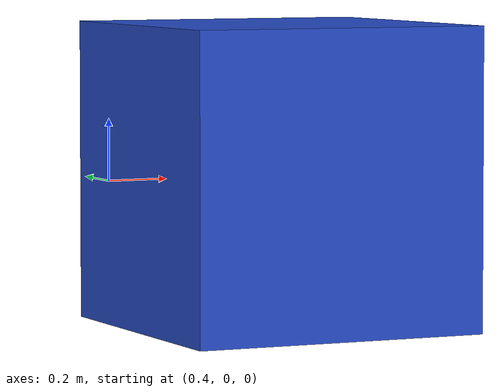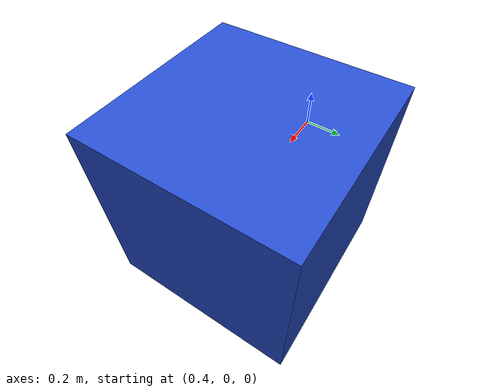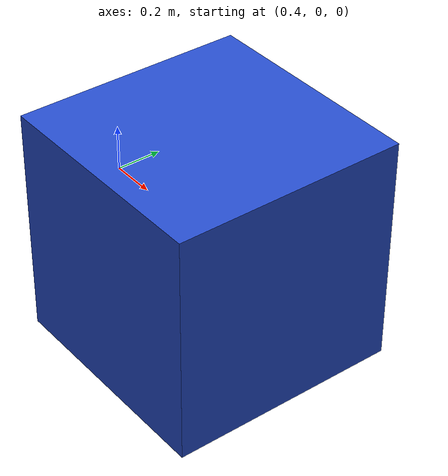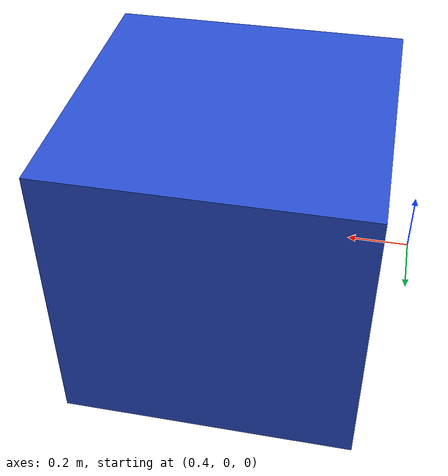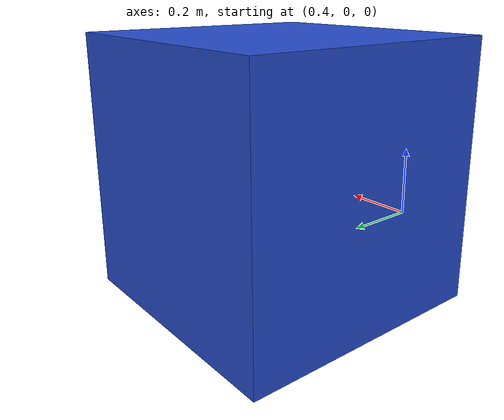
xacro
<?xml version="1.0" ?>

<robot name="simple_box" xmlns:xacro="http://ros.org/wiki/xacro">
  <link name="my_box">
    <inertial>
      <origin xyz="1 0 0" />
      <mass value="1.0" />
      <inertia  ixx="1.0" ixy="0.0"  ixz="0.0"  iyy="1.0"  iyz="0.0"  izz="1.0" />
    </inertial>
    <visual>
      <origin xyz="1 0 0"/>
      <geometry>
        <box size="1 1 1" />
      </geometry>
    </visual>
    <collision>
      <origin xyz="1 0 0"/>
      <geometry>
        <box size="1 1 1" />
      </geometry>
    </collision>
  </link>
  <gazebo reference="my_box">
    <material>Gazebo/Blue</material>
  </gazebo>
</robot>
